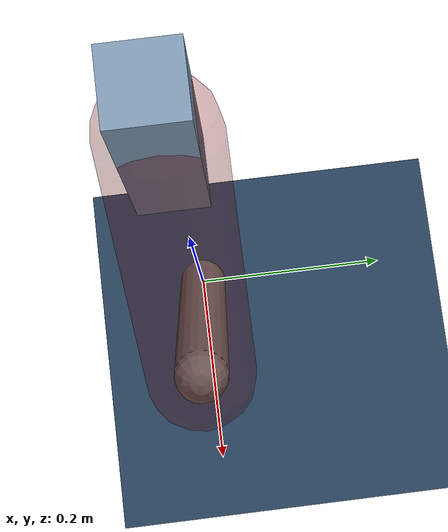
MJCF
<mujoco model="Hopper2D">
	<compiler inertiafromgeom="true" angle="radian" />
	<option timestep="0.001" integrator="implicit" cone="elliptic" solver="Newton" tolerance="1e-10" />

	<default>
		<geom contype="1" conaffinity="1" condim="3" friction="2 0.005 0.0001" solref="0.005 1" />
		<joint limited="true" damping="0.1" />
	</default>

	<asset>
		<texture name="skybox" type="skybox" builtin="gradient" rgb1=".4 .6 .8" rgb2="0 0 0" width="800" height="800" />
		<texture name="grid" type="2d" builtin="checker" rgb1=".1 .2 .3" rgb2=".2 .3 .4" width="300" height="300" mark="edge" markrgb=".2 .3 .4" />
		<material name="ground" texture="grid" texrepeat="1 1" texuniform="true" reflectance="0.1" />
		<material name="leg" rgba="0.5 0.6 0.7 1" />
	</asset>

	<worldbody>

		<geom name="floor" type="plane" size="5 5 0.25" material="ground" />

		<light directional="false" diffuse="0.8 0.8 0.8" specular="0.3 0.3 0.3" pos="0 0 2" dir="0 0 -1" />
		<light mode="targetbodycom" target="base" directional="false" diffuse="0.8 0.8 0.8" specular="0.3 0.3 0.3" pos="0 0 2" dir="0 0 -1" />

		<camera name="fixed" pos="0 -2 1" xyaxes="1 0 0 0 0 1" />
		<camera name="tracking" mode="trackcom" pos="0 -3 1" />

		<body name="root" pos="0 0 0.4997643099200505">
			<joint name="slide_x" type="slide" axis="1 0 0" range="-100 100" />
			<joint name="slide_z" type="slide" axis="0 0 1" range="0 10" />

			<body name="base" pos="0 0 0">
				<geom name="torso" type="box" size="0.03 0.03 0.1" mass="2.4240000000000004" material="leg" />

				<body name="link1" pos="0 0 0" euler="0 1.0048728193093472 0">
					<joint type="hinge" axis="0 -1 0" pos="0 0 0" name="hinge1" limited="true" range="-3.14 3.14" stiffness="0" damping="0.1" />
					<geom name="thigh" type="capsule" fromto="0 0 0 0.27437334751348974 0 0" size="0.05" rgba="0.5 0 0 0.3" mass="0.9202080382864223" />

					<body name="link2" pos="0.27437334751348974 0 0" euler="0 1.067694373274551 0">
						<joint type="hinge" axis="0 -1 0" pos="0 0 0" name="hinge2" limited="true" range="-3.14 3.14" stiffness="0" damping="0.1" />
						<geom name="shank" type="capsule" fromto="0 0 0 0.3058715963682944 0 0" size="0.025" mass="0.48819727709463556" />

					</body>
				</body>
			</body>
		</body>
	</worldbody>

	<actuator>
		<motor name="torque1" joint="hinge1" ctrlrange="-64.88968794700686 64.88968794700686" ctrllimited="true" gear="1" />
		<motor name="torque2" joint="hinge2" ctrlrange="-38.57079702760789 38.57079702760789" ctrllimited="true" gear="1" />
	</actuator>
</mujoco>
